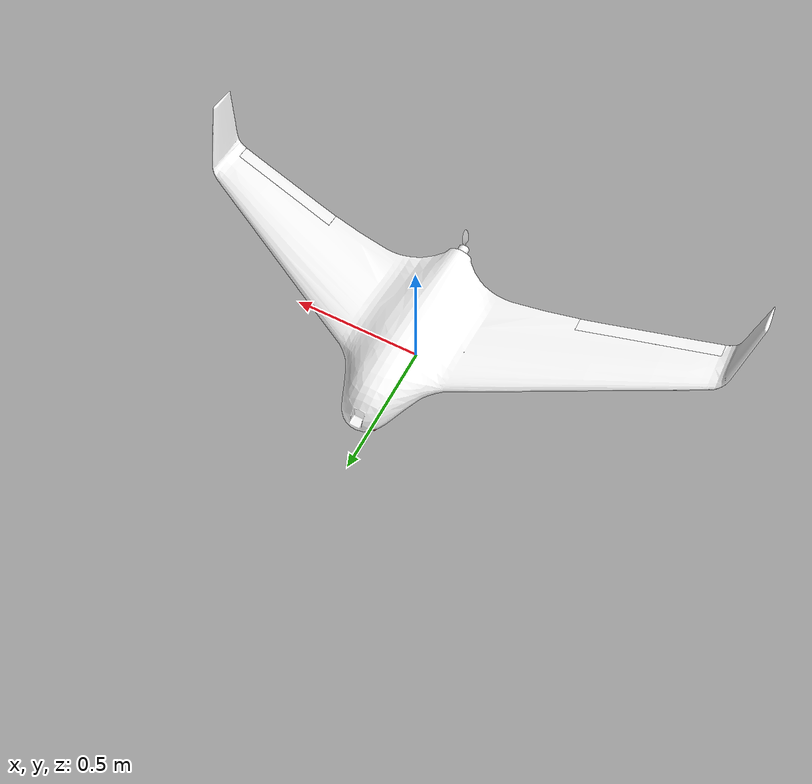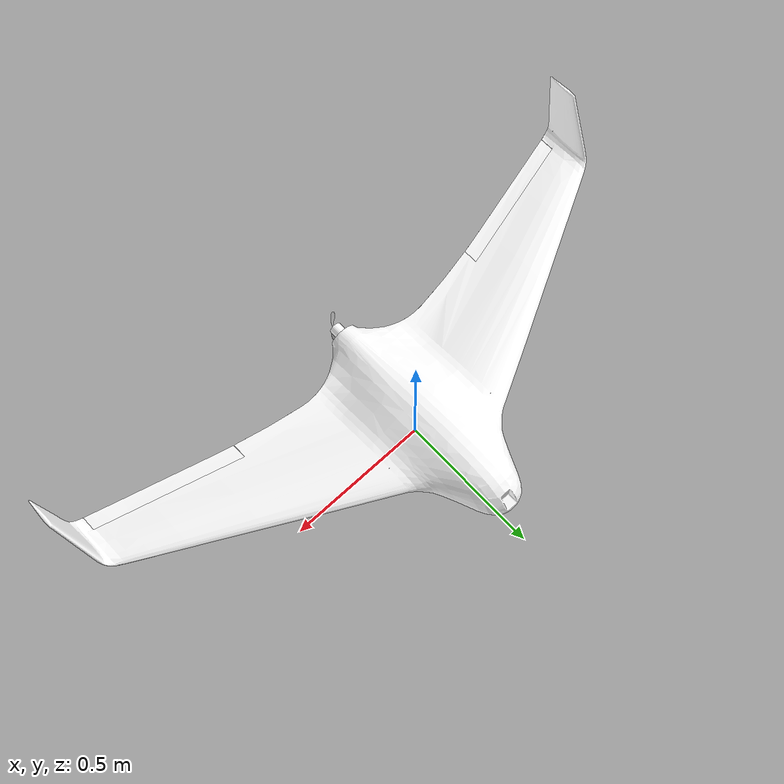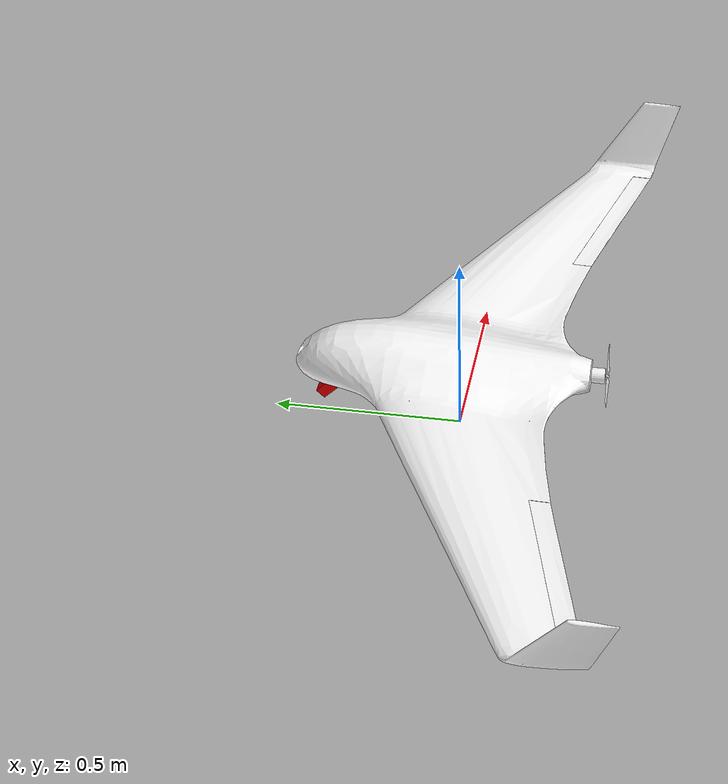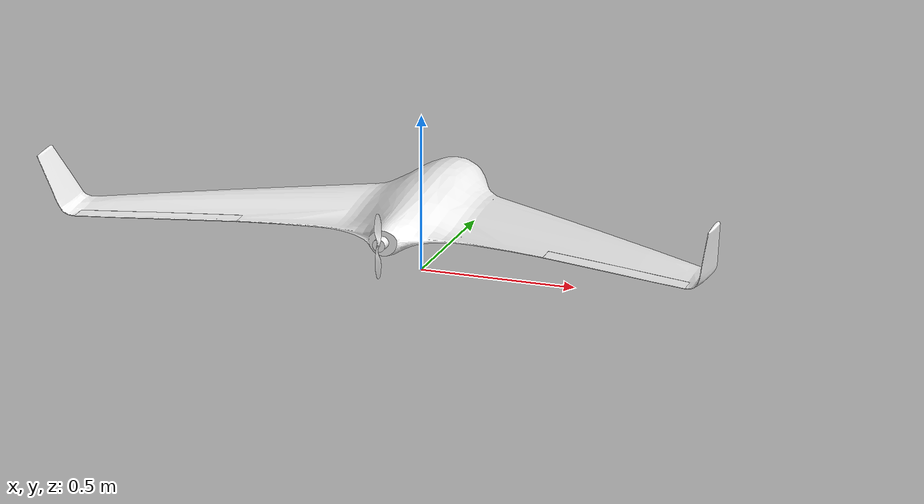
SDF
<sdf version="1.7">
 <world name="runway">
  <plugin filename="gz-sim-physics-system" name="gz::sim::systems::Physics"/>
  <plugin filename="gz-sim-user-commands-system" name="gz::sim::systems::UserCommands"/>
  <plugin filename="gz-sim-scene-broadcaster-system" name="gz::sim::systems::SceneBroadcaster"/>
  <plugin filename="gz-sim-imu-system" name="gz::sim::systems::Imu"/>
  <plugin filename="gz-sim-sensors-system" name="gz::sim::systems::Sensors"/>
  <plugin filename="gz-sim-rendering-system" name="gz::sim::systems::Rendering"/>
  <scene><ambient>1.0 1.0 1.0</ambient><background>0.8 0.8 0.8</background></scene>
  <light type="directional" name="sun">
   <pose>0 0 10 0 0 0</pose>
   <diffuse>0.8 0.8 0.8 1</diffuse>
   <specular>0.8 0.8 0.8 1</specular>
   <attenuation>
    <range>1000</range>
    <constant>0.9</constant>
    <linear>0.01</linear>
    <quadratic>0.001</quadratic>
   </attenuation>
   <direction>-0.5 0.1 -0.9</direction>
  </light>
  <include><pose degrees="true">0 0 0.2 0 0 90</pose><uri>model://skywalker_x8</uri></include>
 </world>
</sdf>

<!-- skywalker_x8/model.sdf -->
<sdf version="1.7">
  <model name="skywalker_x8">
    <pose>0 0 0.246 0 0 0</pose>

    <link name='base_link'>
      <pose>0 0 0 0 0 0</pose>
      <inertial>
        <pose>0 0 0 0 0 0</pose>
        <mass>4.5</mass>
        <inertia>
          <ixx>0.45</ixx>
          <ixy>0</ixy>
          <ixz>0.06</ixz>
          <iyy>0.325</iyy>
          <iyz>0</iyz>
          <izz>0.75</izz>
        </inertia>
      </inertial>
      <collision name='base_link_collision'>
        <pose>0 0 -0.07 0 0 0</pose>
        <geometry>
          <box>
            <size>0.80 2.15 0.2</size>
          </box>
        </geometry>
      </collision>
      <visual name='base_link_visual'>
        <geometry>
          <mesh>
            <uri>model://skywalker_x8/meshes/x8_wing.dae</uri>
          </mesh>
        </geometry>
        <material>
          <diffuse>1.0 1.0 1.0</diffuse>
          <specular>1.0 1.0 1.0</specular>
          <pbr>
            <metal>
              <albedo_map>model://skywalker_x8/materials/textures/x8.tga</albedo_map>
              <metalness>0.1</metalness>
            </metal>
          </pbr>
        </material>
      </visual>
      <visual name='m4'>
        <pose degrees="true">-0.361 0 0.0 0 90 0</pose>
        <geometry>
          <cylinder>
            <length>0.035</length>
            <radius>0.02</radius>
          </cylinder>
        </geometry>
        <material>
          <ambient>1 1 1</ambient>
          <diffuse>1 1 1</diffuse>
          <specular>1 1 1</specular>
          <pbr>
            <metal>
              <albedo_map>
                model://skywalker_x8/materials/textures/blue_metal/blue_metal_basecolor.jpg</albedo_map>
              <metalness_map>
                model://skywalker_x8/materials/textures/blue_metal/blue_metal_metallic.jpg</metalness_map>
              <normal_map>model://skywalker_x8/materials/textures/blue_metal/blue_metal_normal.jpg</normal_map>
              <roughness_map>
                model://skywalker_x8/materials/textures/blue_metal/blue_metal_roughness.jpg</roughness_map>
              <roughness>1.0</roughness>
              <metalness>1.0</metalness>
            </metal>
          </pbr>
        </material>
      </visual>
      <!-- save for debugging use -->
    </link>

    <link name='rotor_pusher'>
      <pose degrees="true">-0.385 0 0.0 0 90 0</pose>
      <inertial>
        <mass>0.025</mass>
        <inertia>
          <ixx>9.75e-06</ixx>
          <ixy>0</ixy>
          <ixz>0</ixz>
          <iyy>0.000166704</iyy>
          <iyz>0</iyz>
          <izz>0.000167604</izz>
        </inertia>
      </inertial>
      <collision name='collision'>
        <pose>0 0 0 0 0 0</pose>
        <geometry>
          <cylinder>
            <length>0.005</length>
            <radius>0.065</radius>
          </cylinder>
        </geometry>
      </collision>
      <visual name='visual'>
        <pose>0 0 0 0 0 0</pose>
        <geometry>
          <mesh>
            <scale>0.8 0.8 0.8</scale>
            <uri>model://skywalker_x8/meshes/iris_prop_ccw.dae</uri>
          </mesh>
        </geometry>
        <material>
          <diffuse>1.0 1.0 1.0</diffuse>
          <specular>1.0 1.0 1.0</specular>
          <pbr>
            <metal>
              <albedo_map>model://skywalker_x8/materials/textures/x8.tga</albedo_map>
              <metalness>0.5</metalness>
            </metal>
          </pbr>
        </material>
      </visual>
    </link>
    <joint name='rotor_pusher_joint' type='revolute'>
      <child>rotor_pusher</child>
      <parent>base_link</parent>
      <axis>
        <xyz>0 0 1</xyz>
        <limit>
          <lower>-1e+16</lower>
          <upper>1e+16</upper>
        </limit>
        <dynamics>
          <damping>0.002</damping>
        </dynamics>
        <use_parent_model_frame>1</use_parent_model_frame>
      </axis>
    </joint>

    <link name="left_elevon">
      <inertial>
        <mass>0.1</mass>
        <inertia>
          <ixx>0.000102319</ixx>
          <ixy>0</ixy>
          <iyy>0.00334417</iyy>
          <ixz>0</ixz>
          <iyz>0</iyz>
          <izz>0.003446072</izz>
        </inertia>
        <pose>-0.30 0.75 -0.005 0 0 0</pose>
      </inertial>
      <visual name='left_elevon_visual'>
        <geometry>
          <mesh>
            <uri>model://skywalker_x8/meshes/x8_elevon_left.dae</uri>
          </mesh>
        </geometry>
        <material>
          <diffuse>1.0 1.0 1.0</diffuse>
          <specular>1.0 1.0 1.0</specular>
          <pbr>
            <metal>
              <albedo_map>model://skywalker_x8/materials/textures/x8.tga</albedo_map>
              <metalness>0.1</metalness>
            </metal>
          </pbr>
        </material>
      </visual>
    </link>

    <link name="right_elevon">
      <inertial>
        <mass>0.1</mass>
        <inertia>
          <ixx>0.000102319</ixx>
          <ixy>0</ixy>
          <iyy>0.00334417</iyy>
          <ixz>0</ixz>
          <iyz>0</iyz>
          <izz>0.003446072</izz>
        </inertia>
        <pose>-0.30 -0.75 -0.005 0 0 0</pose>
      </inertial>
      <visual name='right_elevon_visual'>
        <geometry>
          <mesh>
            <uri>model://skywalker_x8/meshes/x8_elevon_right.dae</uri>
          </mesh>
        </geometry>
        <material>
          <diffuse>1.0 1.0 1.0</diffuse>
          <specular>1.0 1.0 1.0</specular>
          <pbr>
            <metal>
              <albedo_map>model://skywalker_x8/materials/textures/x8.tga</albedo_map>
              <metalness>0.1</metalness>
            </metal>
          </pbr>
        </material>
      </visual>
    </link>

    <!-- Joint range -30/+30 deg. -->
    <joint name='left_elevon_joint' type='revolute'>
      <parent>base_link</parent>
      <child>left_elevon</child>
      <pose>-0.27 0.6 -0.005 0 0 0.265</pose>
      <axis>
        <xyz>0 1 0</xyz>
        <limit>
          <lower>-0.53</lower>
          <upper>0.53</upper>
        </limit>
        <dynamics>
          <damping>0.1</damping>
        </dynamics>
      </axis>
    </joint>

    <!-- Joint range -30/+30 deg. -->
    <joint name='right_elevon_joint' type='revolute'>
      <parent>base_link</parent>
      <child>right_elevon</child>
      <pose>-0.27 -0.6 -0.005 0 0 -0.265</pose>
      <axis>
        <xyz>0 1 0</xyz>
        <limit>
          <lower>-0.53</lower>
          <upper>0.53</upper>
        </limit>
        <dynamics>
          <damping>0.1</damping>
        </dynamics>
      </axis>
    </joint>

    <!-- sensors -->
    <link name='imu_link'>
      <inertial>
        <pose>0 0 0 0 0 0</pose>
        <mass>0.15</mass>
        <inertia>
          <ixx>0.00002</ixx>
          <ixy>0</ixy>
          <ixz>0</ixz>
          <iyy>0.00002</iyy>
          <iyz>0</iyz>
          <izz>0.00002</izz>
        </inertia>
      </inertial>
      <sensor name="imu_sensor" type="imu">
        <pose degrees="true">0 0 0 180 0 0</pose>
        <always_on>1</always_on>
        <update_rate>1000.0</update_rate>
      </sensor>
    </link>
    <joint name='skywalker_x8/imu_joint' type='revolute'>
      <child>imu_link</child>
      <parent>base_link</parent>
      <axis>
        <xyz>0 0 1</xyz>
        <limit>
          <lower>0</lower>
          <upper>0</upper>
          <effort>0</effort>
          <velocity>0</velocity>
        </limit>
        <dynamics>
          <damping>1.0</damping>
        </dynamics>
        <use_parent_model_frame>1</use_parent_model_frame>
      </axis>
    </joint>

    <link name="camera_link">
      <!-- 📍 Position: under nose (Kept exactly the same) -->
      <pose>0.35 0 -0.10 0 0.785 0</pose>

      <!-- 🟢 THE FIX: Force Gazebo to treat the link as lightweight (e.g., 10 grams) -->
      <inertial>
        <mass>0.01</mass>
        <inertia>
          <ixx>0.00001</ixx>
          <ixy>0</ixy>
          <ixz>0</ixz>
          <iyy>0.00001</iyy>
          <iyz>0</iyz>
          <izz>0.00001</izz>
        </inertia>
      </inertial>

      <!-- Your visual marker stays exactly the same -->
      <visual name="camera_visual">
        <geometry>
          <box>
            <size>0.05 0.08 0.03</size>
          </box>
        </geometry>
        <material>
          <ambient>1 0 0 1</ambient>
          <diffuse>1 0 0 1</diffuse>
          <emissive>0.5 0 0 1</emissive>
        </material>
      </visual>

      <!-- Your sensor block stays exactly the same -->
      <sensor name="front_camera" type="camera">
        <always_on>1</always_on>
        <update_rate>20</update_rate>
        <visualize>true</visualize>
        <camera>
          <horizontal_fov>1.2</horizontal_fov>
          <image>
            <width>640</width>
            <height>480</height>
            <format>R8G8B8</format>
          </image>
          <clip>
            <near>0.1</near>
            <far>2000</far>
          </clip>
        </camera>
      </sensor>
    </link>

    <joint name="camera_joint" type="fixed">
      <parent>base_link</parent>
      <child>camera_link</child>
    </joint>

    <!-- plugins -->
    <plugin filename="gz-sim-joint-state-publisher-system"
      name="gz::sim::systems::JointStatePublisher">
    </plugin>

    <!-- rotor_pusher lift-drag -->
    <plugin filename="gz-sim-lift-drag-system"
      name="gz::sim::systems::LiftDrag">
      <a0>0.30</a0>
      <alpha_stall>1.4</alpha_stall>
      <cla>4.2500</cla>
      <cda>0.10</cda>
      <cma>0.0</cma>
      <cla_stall>-0.025</cla_stall>
      <cda_stall>0.0</cda_stall>
      <cma_stall>0.0</cma_stall>
      <area>0.02</area>
      <air_density>1.2041</air_density>
      <cp>0.074205 0 0</cp>
      <forward>0 1 0</forward>
      <upward>0 0 1</upward>
      <link_name>rotor_pusher</link_name>
    </plugin>
    <plugin filename="gz-sim-lift-drag-system"
      name="gz::sim::systems::LiftDrag">
      <a0>0.30</a0>
      <alpha_stall>1.4</alpha_stall>
      <cla>4.2500</cla>
      <cda>0.10</cda>
      <cma>0.0</cma>
      <cla_stall>-0.025</cla_stall>
      <cda_stall>0.0</cda_stall>
      <cma_stall>0.0</cma_stall>
      <area>0.02</area>
      <air_density>1.2041</air_density>
      <cp>-0.074205 0 0</cp>
      <forward>0 -1 0</forward>
      <upward>0 0 1</upward>
      <link_name>rotor_pusher</link_name>
    </plugin>
    <!-- wing lift-drag -->
    <plugin filename="gz-sim-lift-drag-system"
      name="gz::sim::systems::LiftDrag">
      <a0>0.13</a0>
      <cla>3.7</cla>
      <cda>0.06417112299</cda>
      <cma>0.0</cma>
      <alpha_stall>0.3391428111</alpha_stall>
      <cla_stall>-3.85</cla_stall>
      <cda_stall>-0.9233984055</cda_stall>
      <cma_stall>0.0</cma_stall>
      <cp>0.01 0 0</cp>
      <area>0.80</area>
      <air_density>1.2041</air_density>
      <forward>1 0 0</forward>
      <upward>0 0 1</upward>
      <link_name>base_link</link_name>
    </plugin>
    <!-- left_elevon lift-drag -->
    <plugin filename="gz-sim-lift-drag-system"
      name="gz::sim::systems::LiftDrag">
      <a0>0.15</a0>
      <cla>6.8</cla>
      <cda>0.06417112299</cda>
      <cma>0.0</cma>
      <alpha_stall>0.6391428111</alpha_stall>
      <cla_stall>-3.85</cla_stall>
      <cda_stall>-0.9233984055</cda_stall>
      <cma_stall>0.0</cma_stall>
      <cp>-0.30 0.75 -0.005</cp>
      <area>0.10</area>
      <air_density>1.2041</air_density>
      <forward>1 0 0</forward>
      <upward>0 0 1</upward>
      <link_name>base_link</link_name>
      <control_joint_name>left_elevon_joint</control_joint_name>
      <control_joint_rad_to_cl>-5.0</control_joint_rad_to_cl>
    </plugin>
    <!-- right_elevon lift-drag -->
    <plugin filename="gz-sim-lift-drag-system"
      name="gz::sim::systems::LiftDrag">
      <a0>0.15</a0>
      <cla>6.8</cla>
      <cda>0.06417112299</cda>
      <cma>0.0</cma>
      <alpha_stall>0.6391428111</alpha_stall>
      <cla_stall>-3.85</cla_stall>
      <cda_stall>-0.9233984055</cda_stall>
      <cma_stall>0.0</cma_stall>
      <cp>-0.30 -0.75 -0.005</cp>
      <area>0.10</area>
      <air_density>1.2041</air_density>
      <forward>1 0 0</forward>
      <upward>0 0 1</upward>
      <link_name>base_link</link_name>
      <control_joint_name>right_elevon_joint</control_joint_name>
      <control_joint_rad_to_cl>-5.0</control_joint_rad_to_cl>
    </plugin>
    <!-- left_winglet lift-drag -->
    <plugin filename="gz-sim-lift-drag-system"
      name="gz::sim::systems::LiftDrag">
      <a0>0.0</a0>
      <cla>4.752798721</cla>
      <cda>0.6417112299</cda>
      <cma>0.0</cma>
      <alpha_stall>0.3391428111</alpha_stall>
      <cla_stall>-3.85</cla_stall>
      <cda_stall>-0.9233984055</cda_stall>
      <cma_stall>0.0</cma_stall>
      <cp>-0.36 1.04 0.08</cp>
      <area>0.12</area>
      <air_density>1.2041</air_density>
      <forward>1 0 0</forward>
      <upward>0 1 0</upward>
      <link_name>base_link</link_name>
    </plugin>
    <!-- right_winglet lift-drag -->
    <plugin filename="gz-sim-lift-drag-system"
      name="gz::sim::systems::LiftDrag">
      <a0>0.0</a0>
      <cla>4.752798721</cla>
      <cda>0.6417112299</cda>
      <cma>0.0</cma>
      <alpha_stall>0.3391428111</alpha_stall>
      <cla_stall>-3.85</cla_stall>
      <cda_stall>-0.9233984055</cda_stall>
      <cma_stall>0.0</cma_stall>
      <cp>-0.36 -1.04 0.08</cp>
      <area>0.12</area>
      <air_density>1.2041</air_density>
      <forward>1 0 0</forward>
      <upward>0 -1 0</upward>
      <link_name>base_link</link_name>
    </plugin>

    <!-- original from standard_vtol -->
    <!-- left_wing_lift-drag -->
    <!-- right_wing_lift-drag -->

    <plugin filename="gz-sim-apply-joint-force-system"
      name="gz::sim::systems::ApplyJointForce">
      <joint_name>rotor_pusher_joint</joint_name>
    </plugin>
    <plugin filename="gz-sim-apply-joint-force-system"
      name="gz::sim::systems::ApplyJointForce">
      <joint_name>left_elevon_joint</joint_name>
    </plugin>
    <plugin filename="gz-sim-apply-joint-force-system"
      name="gz::sim::systems::ApplyJointForce">
      <joint_name>right_elevon_joint</joint_name>
    </plugin>

    <plugin name="ArduPilotPlugin" filename="ArduPilotPlugin">
      <!-- Port settings -->
      <fdm_addr>127.0.0.1</fdm_addr>
      <fdm_port_in>9002</fdm_port_in>
      <connectionTimeoutMaxCount>5</connectionTimeoutMaxCount>
      <lock_step>1</lock_step>

      <modelXYZToAirplaneXForwardZDown degrees="true">0 0 0 180 0 0</modelXYZToAirplaneXForwardZDown>
      <gazeboXYZToNED degrees="true">0 0 0 180 0 90</gazeboXYZToNED>

      <!-- Sensors -->
      <imuName>imu_sensor</imuName>

      <!--
          incoming control command [0, 1]
          so offset it by 0 to get [0, 1]
          and divide max target by 1.
          offset = 0
          multiplier = 838 max rpm / 1 = 838
        -->

      <!--
          SERVO3_FUNCTION   70 (Throttle)
          SERVO3_MAX        2000
          SERVO3_MIN        1000
          SERVO3_REVERSED   0
          SERVO3_TRIM       1000
       -->
      <control channel="2">
        <jointName>rotor_pusher_joint</jointName>
        <useForce>1</useForce>
        <multiplier>838</multiplier>
        <offset>0</offset>
        <servo_min>1000</servo_min>
        <servo_max>2000</servo_max>
        <type>VELOCITY</type>
        <p_gain>0.20</p_gain>
        <i_gain>0</i_gain>
        <d_gain>0</d_gain>
        <i_max>0</i_max>
        <i_min>0</i_min>
        <cmd_max>2.5</cmd_max>
        <cmd_min>-2.5</cmd_min>
      </control>

      <control channel="0">
        <jointName>left_elevon_joint</jointName>
        <useForce>1</useForce>
        <multiplier>1.048</multiplier>
        <offset>-0.5</offset>
        <servo_min>1100</servo_min>
        <servo_max>1900</servo_max>
        <type>POSITION</type>
        <p_gain>10.0</p_gain>
        <i_gain>0</i_gain>
        <d_gain>0</d_gain>
        <i_max>0</i_max>
        <i_min>0</i_min>
        <cmd_max>2.5</cmd_max>
        <cmd_min>-2.5</cmd_min>
      </control>

      <!--
          SERVO2_FUNCTION   78 (Elevon Right)
          SERVO2_MAX        1900
          SERVO2_MIN        1100
          SERVO2_REVERSED   0
          SERVO2_TRIM       1500
       -->
      <control channel="1">
        <jointName>right_elevon_joint</jointName>
        <useForce>1</useForce>
        <multiplier>1.048</multiplier>
        <offset>-0.5</offset>
        <servo_min>1100</servo_min>
        <servo_max>1900</servo_max>
        <type>POSITION</type>
        <p_gain>10.0</p_gain>
        <i_gain>0</i_gain>
        <d_gain>0</d_gain>
        <i_max>0</i_max>
        <i_min>0</i_min>
        <cmd_max>2.5</cmd_max>
        <cmd_min>-2.5</cmd_min>
      </control>

    </plugin>
  </model>
</sdf>
